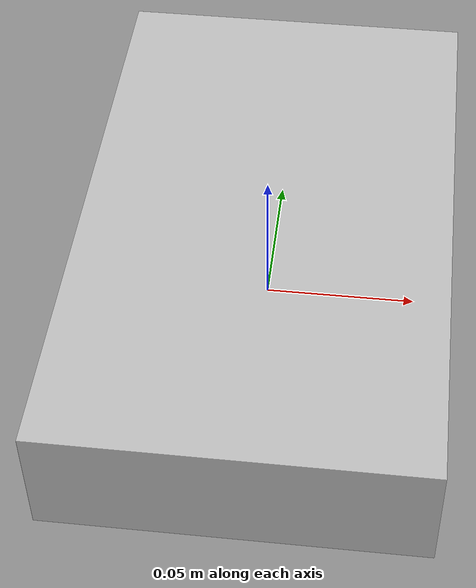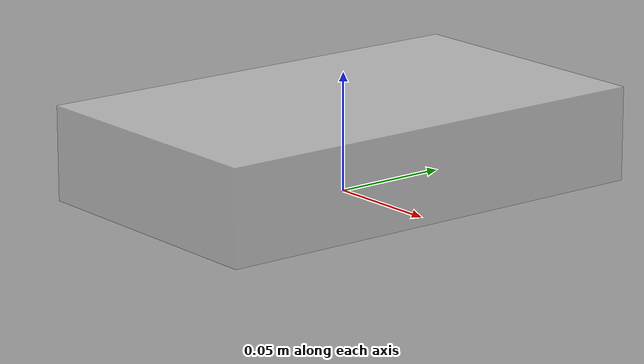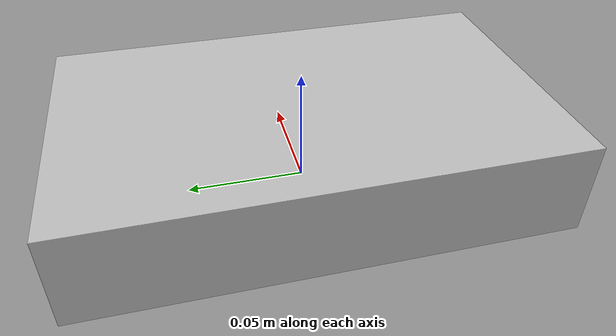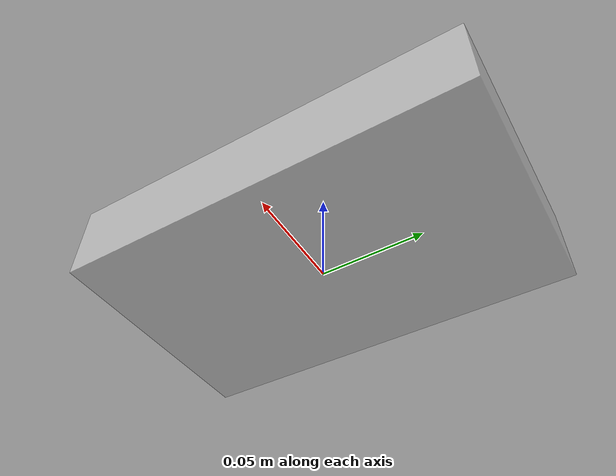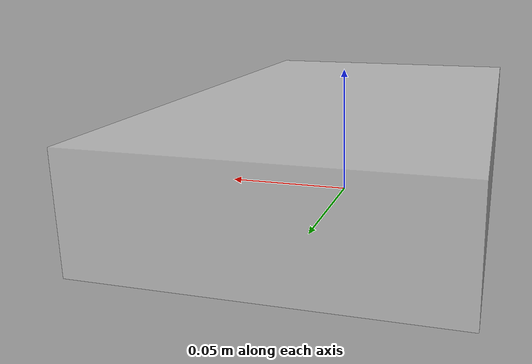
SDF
<?xml version="1.0"?>
<sdf version="1.7">

  <!-- world->ghost_body_y->ghost_body_z_sphere-->
  <model name="box">
    <!-- The model for a solid box of uniform density. -->
    <link name="ghost_body_y"></link>
    <link name="ghost_body_z"></link>

    <joint name="y_slider" type="prismatic">
      <parent>world</parent>
      <child>ghost_body_y</child>
      <axis>
        <xyz>1 0 0</xyz>
        <!-- Drake attaches an actuator to all joints with a non-zero effort
             limit. We do not want an actuator for this joint. -->
        <limit>
          <effort>0</effort>
        </limit>
        <dynamics>
          <damping>0.999999</damping>
          <spring_reference>0</spring_reference>
          <spring_stiffness>0</spring_stiffness>
        </dynamics>
      </axis>
    </joint>

    <joint name="z_slider" type="prismatic">
      <parent>ghost_body_y</parent>
      <child>ghost_body_z</child>
      <axis>
        <xyz>0 1 0</xyz>
        <!-- Drake attaches an actuator to all joints with a non-zero effort
             limit. We do not want an actuator for this joint and therefore we
             set a zero effort limit. -->
        <limit>
          <effort>0</effort>
        </limit>
        <dynamics>
          <damping>0.999999</damping>
          <spring_reference>0</spring_reference>
          <spring_stiffness>0</spring_stiffness>
        </dynamics>
      </axis>
    </joint>

    <joint name="rotation" type="revolute">
      <parent>ghost_body_z</parent>
      <child>box</child>
      <axis>
        <xyz>0 0 1</xyz>
        <!-- Drake attaches an actuator to all joints with a non-zero effort
             limit. We do not want an actuator for this joint and therefore we
             set a zero effort limit. -->
        <limit>
          <effort>0</effort>
        </limit>
        <dynamics>
          <damping>0.999999</damping>
          <spring_reference>0</spring_reference>
          <spring_stiffness>0</spring_stiffness>
        </dynamics>
      </axis>
    </joint>

    <link name="box">
      <inertial>
        <mass>100.0</mass>

        <inertia>
          <ixx>10</ixx>
          <ixy>0</ixy>
          <ixz>0</ixz>
          <iyy>10</iyy>
          <iyz>0</iyz>
          <izz>10</izz>
        </inertia>
      </inertial>
      <pose>0 0 0.02 0 0 0</pose>

      <visual name="box_visual">
        <geometry>
          <box>
            <size>0.12 0.2 0.04</size>
          </box>
        </geometry>
        <material>
          <diffuse>0.8 0.8 0.8 0.8</diffuse>
        </material>
      </visual>

      <collision name="collision">
        <geometry>
          <box>
            <size>0.12 0.2 0.04</size>
          </box>
        </geometry>
        <surface>
          <friction>
            <ode>
              <mu>1.0</mu>
              <mu2>1.0</mu2>
            </ode>
          </friction>
        </surface>
      </collision>
    </link>
  </model>

</sdf>
